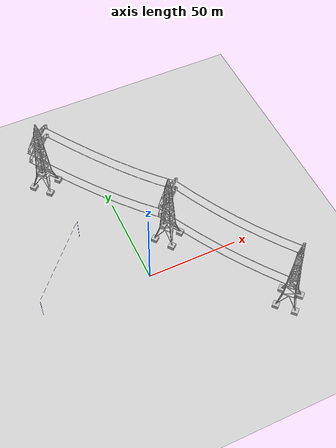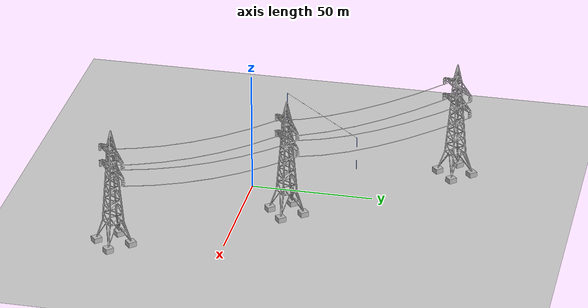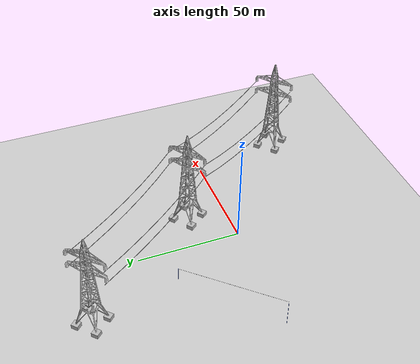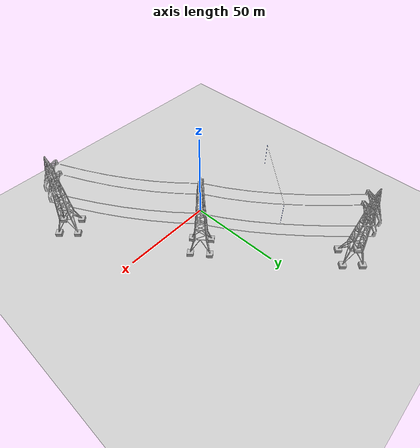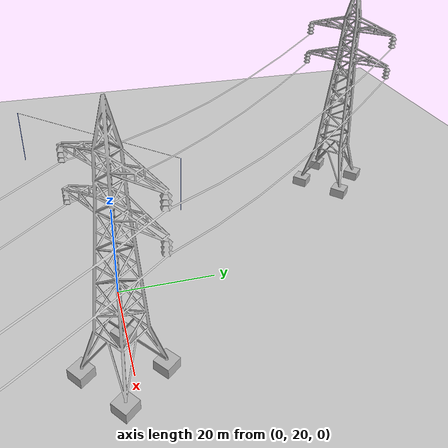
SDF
<sdf version="1.6">
 <world name="default">
  <light name="sun" type="directional">
   <pose>0 0 10 0 -0 0</pose>
   <diffuse>0.8 0.8 0.8 1</diffuse>
   <specular>0.2 0.2 0.2 1</specular>
   <attenuation>
    <range>1000</range>
    <constant>0.9</constant>
    <linear>0.01</linear>
    <quadratic>0.001</quadratic>
   </attenuation>
   <direction>-0.5 0.1 -0.9</direction>
  </light>
  <model name="ground_plane">
   <static>1</static>
   <link name="link">
    <collision name="collision">
     <geometry><plane><normal>0 0 1</normal><size>100 100</size></plane></geometry>
     <surface>
      <contact><collide_bitmask>65535</collide_bitmask></contact>
      <friction><ode><mu>100</mu><mu2>50</mu2></ode></friction>
     </surface>
    </collision>
    <visual name="visual">
     <cast_shadows>0</cast_shadows>
     <geometry><plane><normal>0 0 1</normal><size>100 100</size></plane></geometry>
     <material>
      <script><uri>file://media/materials/scripts/gazebo.material</uri><name>Gazebo/Grey</name></script>
     </material>
    </visual>
   </link>
  </model>
  <gravity>0 0 -9.8</gravity>
  <magnetic_field>6e-06 2.3e-05 -4.2e-05</magnetic_field>
  <atmosphere type="adiabatic"/>
  <physics name="default_physics" default="0" type="ode">
   <max_step_size>0.001</max_step_size>
   <real_time_factor>1</real_time_factor>
   <real_time_update_rate>1000</real_time_update_rate>
  </physics>
  <scene><ambient>0.4 0.4 0.4 1</ambient><background>0.7 0.7 0.7 1</background><shadows>1</shadows></scene>
  <audio><device>default</device></audio>
  <spherical_coordinates>
   <surface_model>EARTH_WGS84</surface_model>
   <latitude_deg>0</latitude_deg>
   <longitude_deg>0</longitude_deg>
   <elevation>0</elevation>
   <heading_deg>0</heading_deg>
  </spherical_coordinates>
  <model name="PowerPylons">
   <link name="link">
    <inertial>
     <pose>0 0 0.0175 0 -0 0</pose>
     <mass>0.1</mass>
     <inertia>
      <ixx>0.000250308</ixx>
      <ixy>0</ixy>
      <ixz>0</ixz>
      <iyy>0.000250308</iyy>
      <iyz>0</iyz>
      <izz>0.0004802</izz>
     </inertia>
    </inertial>
    <collision name="collision">
     <pose>0 0 0.0175 0 -0 0</pose>
     <geometry><cylinder><radius>0.098</radius><length>0.035</length></cylinder></geometry>
    </collision>
    <visual name="visual">
     <geometry><mesh><uri>model://PowerPylons/meshes/50M_towers.dae</uri></mesh></geometry>
    </visual>
   </link>
   <pose>15.3347 25.2361 -4e-06 -8e-06 6.4e-05 -0.903078</pose>
  </model>
  <model name="Powerline1">
   <link name="link">
    <inertial>
     <mass>0.240742</mass>
     <inertia>
      <ixx>3.38863</ixx>
      <ixy>0</ixy>
      <ixz>0</ixz>
      <iyy>3.38889</iyy>
      <iyz>0</iyz>
      <izz>0.00078828</izz>
     </inertia>
    </inertial>
    <pose>-25.007 0 7.00001 0 -0 0</pose>
    <visual name="visual">
     <geometry><box><size>0.1 0.1 15</size></box></geometry>
     <material>
      <script><name>Gazebo/Blue</name><uri>file://media/materials/scripts/gazebo.material</uri></script>
      <shader type="pixel"><normal_map>__default__</normal_map></shader>
      <ambient>0.3 0.3 0.3 1</ambient>
      <diffuse>0.7 0.7 0.7 1</diffuse>
      <specular>0.01 0.01 0.01 1</specular>
      <emissive>0 0 0 1</emissive>
     </material>
    </visual>
    <collision name="collision">
     <geometry><box><size>0.1 0.1 15</size></box></geometry>
     <surface>
      <friction>
       <ode><mu>1</mu><mu2>1</mu2><fdir1>0 0 0</fdir1><slip1>0</slip1><slip2>0</slip2></ode>
       <torsional>
        <coefficient>1</coefficient>
        <patch_radius>0</patch_radius>
        <surface_radius>0</surface_radius>
        <use_patch_radius>1</use_patch_radius>
        <ode><slip>0</slip></ode>
       </torsional>
      </friction>
      <bounce><restitution_coefficient>0</restitution_coefficient><threshold>1e+06</threshold></bounce>
      <contact>
       <collide_without_contact>0</collide_without_contact>
       <collide_without_contact_bitmask>1</collide_without_contact_bitmask>
       <collide_bitmask>1</collide_bitmask>
       <ode>
        <soft_cfm>0</soft_cfm>
        <soft_erp>0.2</soft_erp>
        <kp>1e+13</kp>
        <kd>1</kd>
        <max_vel>0.01</max_vel>
        <min_depth>0</min_depth>
       </ode>
       <bullet>
        <split_impulse>1</split_impulse>
        <split_impulse_penetration_threshold>-0.01</split_impulse_penetration_threshold>
        <soft_cfm>0</soft_cfm>
        <soft_erp>0.2</soft_erp>
        <kp>1e+13</kp>
        <kd>1</kd>
       </bullet>
      </contact>
     </surface>
    </collision>
   </link>
   <link name="link_0">
    <inertial>
     <mass>1</mass>
     <inertia><ixx>0.145833</ixx><ixy>0</ixy><ixz>0</ixz><iyy>0.145833</iyy><iyz>0</iyz><izz>0.125</izz></inertia>
    </inertial>
    <pose>0 0 14.5 0 -1.56987 0</pose>
    <visual name="visual">
     <geometry><cylinder><radius>0.035</radius><length>50</length></cylinder></geometry>
     <material>
      <lighting>1</lighting>
      <script><uri>file://media/materials/scripts/gazebo.material</uri><name>Gazebo/Grey</name></script>
      <shader type="pixel"><normal_map>__default__</normal_map></shader>
      <ambient>0.3 0.3 0.3 1</ambient>
      <diffuse>0.7 0.7 0.7 1</diffuse>
      <specular>0.01 0.01 0.01 1</specular>
      <emissive>0 0 0 1</emissive>
     </material>
    </visual>
    <collision name="collision">
     <geometry><cylinder><radius>0.035</radius><length>30</length></cylinder></geometry>
     <surface>
      <friction>
       <ode><mu>1</mu><mu2>1</mu2><fdir1>0 0 0</fdir1><slip1>0</slip1><slip2>0</slip2></ode>
       <torsional>
        <coefficient>1</coefficient>
        <patch_radius>0</patch_radius>
        <surface_radius>0</surface_radius>
        <use_patch_radius>1</use_patch_radius>
        <ode><slip>0</slip></ode>
       </torsional>
      </friction>
      <bounce><restitution_coefficient>0</restitution_coefficient><threshold>1e+06</threshold></bounce>
      <contact>
       <collide_without_contact>0</collide_without_contact>
       <collide_without_contact_bitmask>1</collide_without_contact_bitmask>
       <collide_bitmask>1</collide_bitmask>
       <ode>
        <soft_cfm>0</soft_cfm>
        <soft_erp>0.2</soft_erp>
        <kp>1e+13</kp>
        <kd>1</kd>
        <max_vel>0.01</max_vel>
        <min_depth>0</min_depth>
       </ode>
       <bullet>
        <split_impulse>1</split_impulse>
        <split_impulse_penetration_threshold>-0.01</split_impulse_penetration_threshold>
        <soft_cfm>0</soft_cfm>
        <soft_erp>0.2</soft_erp>
        <kp>1e+13</kp>
        <kd>1</kd>
       </bullet>
      </contact>
     </surface>
    </collision>
   </link>
   <link name="link_clone">
    <inertial>
     <mass>0.240742</mass>
     <inertia>
      <ixx>3.38863</ixx>
      <ixy>0</ixy>
      <ixz>0</ixz>
      <iyy>3.38889</iyy>
      <iyz>0</iyz>
      <izz>0.00078828</izz>
     </inertia>
    </inertial>
    <pose>25 0 7 1e-05 -0 0</pose>
    <visual name="visual">
     <geometry><box><size>0.1 0.1 15</size></box></geometry>
     <material>
      <script><name>Gazebo/Blue</name><uri>file://media/materials/scripts/gazebo.material</uri></script>
      <shader type="pixel"><normal_map>__default__</normal_map></shader>
      <ambient>0.3 0.3 0.3 1</ambient>
      <diffuse>0.7 0.7 0.7 1</diffuse>
      <specular>0.01 0.01 0.01 1</specular>
      <emissive>0 0 0 1</emissive>
     </material>
    </visual>
    <collision name="collision">
     <geometry><box><size>0.1 0.1 15</size></box></geometry>
     <surface>
      <friction>
       <ode><mu>1</mu><mu2>1</mu2><fdir1>0 0 0</fdir1><slip1>0</slip1><slip2>0</slip2></ode>
       <torsional>
        <coefficient>1</coefficient>
        <patch_radius>0</patch_radius>
        <surface_radius>0</surface_radius>
        <use_patch_radius>1</use_patch_radius>
        <ode><slip>0</slip></ode>
       </torsional>
      </friction>
      <bounce><restitution_coefficient>0</restitution_coefficient><threshold>1e+06</threshold></bounce>
      <contact>
       <collide_without_contact>0</collide_without_contact>
       <collide_without_contact_bitmask>1</collide_without_contact_bitmask>
       <collide_bitmask>1</collide_bitmask>
       <ode>
        <soft_cfm>0</soft_cfm>
        <soft_erp>0.2</soft_erp>
        <kp>1e+13</kp>
        <kd>1</kd>
        <max_vel>0.01</max_vel>
        <min_depth>0</min_depth>
       </ode>
       <bullet>
        <split_impulse>1</split_impulse>
        <split_impulse_penetration_threshold>-0.01</split_impulse_penetration_threshold>
        <soft_cfm>0</soft_cfm>
        <soft_erp>0.2</soft_erp>
        <kp>1e+13</kp>
        <kd>1</kd>
       </bullet>
      </contact>
     </surface>
    </collision>
   </link>
   <joint name="link_0_JOINT_0" type="fixed">
    <parent>link_0</parent>
    <child>link</child>
    <physics>
     <ode><limit><cfm>0</cfm><erp>0.2</erp></limit><suspension><cfm>0</cfm><erp>0.2</erp></suspension></ode>
    </physics>
   </joint>
   <joint name="link_0_JOINT_1" type="fixed">
    <parent>link_0</parent>
    <child>link_clone</child>
    <physics>
     <ode><limit><cfm>0</cfm><erp>0.2</erp></limit><suspension><cfm>0</cfm><erp>0.2</erp></suspension></ode>
    </physics>
   </joint>
   <static>1</static>
   <pose>-40.9553 20.5217 0 0 -0 0.825464</pose>
  </model>
 </world>
</sdf>
